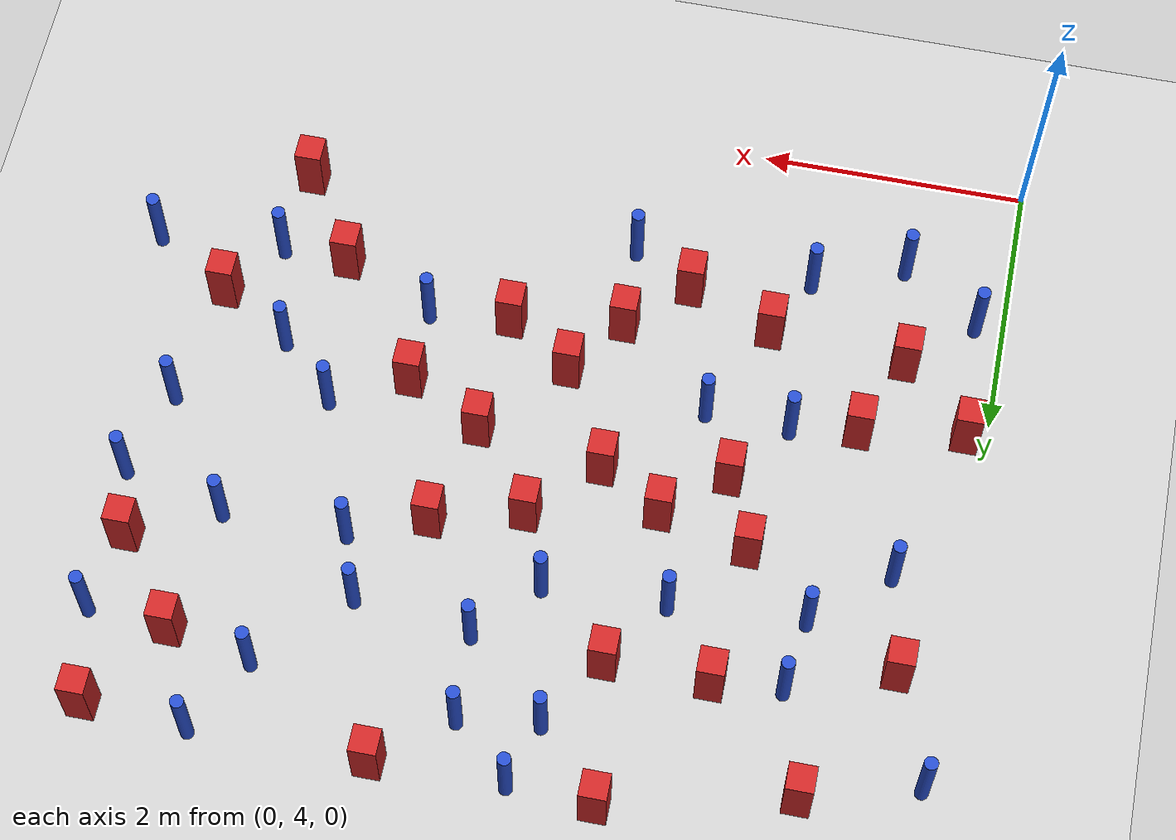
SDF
<sdf version="1.6">
 <world name="default">
  <model name="ground_plane">
   <static>1</static>
   <link name="link">
    <collision name="collision">
     <geometry><plane><normal>0 0 1</normal><size>100 100</size></plane></geometry>
     <surface><friction><ode><mu>100</mu><mu2>50</mu2></ode></friction></surface>
    </collision>
    <visual name="visual">
     <cast_shadows>0</cast_shadows>
     <geometry><plane><normal>0 0 1</normal><size>100 100</size></plane></geometry>
     <material>
      <ambient>1.0 1.0 1.0 1.0</ambient>
      <diffuse>0.8 0.8 0.8 1.0</diffuse>
      <specular>0.01 0.01 0.01 1.000000</specular>
     </material>
    </visual>
   </link>
  </model>
  <model name="square_post_obstacle5">
   <static>true</static>
   <pose>5.80061955398 6.0174033591 1.91545236811e-07 -7.35059704564e-06 1.12565212e-07 2.39332434364e-05</pose>
   <link name="link">
    <pose>0 0 0.25 0 -0 0</pose>
    <inertial>
     <mass>100</mass>
     <inertia>
      <ixx>0.166667</ixx>
      <ixy>0</ixy>
      <ixz>0</ixz>
      <iyy>0.166667</iyy>
      <iyz>0</iyz>
      <izz>0.166667</izz>
     </inertia>
    </inertial>
    <collision name="collision"><geometry><box><size>.2 .2 .5</size></box></geometry></collision>
    <visual name="visual">
     <geometry><box><size>.2 .2 .5</size></box></geometry>
     <material>
      <script><name>Gazebo/Red</name><uri>file://media/materials/scripts/gazebo.material</uri></script>
     </material>
    </visual>
   </link>
  </model>
  <model name="pole_obstacle7">
   <static>true</static>
   <pose>4.88102241531 8.92178213815 7.38925637345e-09 -8.471706928e-08 1.24976765081e-08 -1.74513093015e-07</pose>
   <link name="link">
    <pose>0 0 0.3 0 -0 0</pose>
    <inertial>
     <mass>1</mass>
     <inertia><ixx>0.145833</ixx><ixy>0</ixy><ixz>0</ixz><iyy>0.145833</iyy><iyz>0</iyz><izz>0.125</izz></inertia>
    </inertial>
    <collision name="collision">
     <geometry><cylinder><radius>0.05</radius><length>.6</length></cylinder></geometry>
    </collision>
    <visual name="visual">
     <geometry><cylinder><radius>0.05</radius><length>.6</length></cylinder></geometry>
     <material>
      <script><name>Gazebo/Blue</name><uri>file://media/materials/scripts/gazebo.material</uri></script>
     </material>
    </visual>
   </link>
  </model>
  <model name="square_post_obstacle12">
   <static>true</static>
   <pose>2.73245616664 6.93386750951 1.91545236811e-07 -7.35059704564e-06 1.12565212e-07 2.39332434364e-05</pose>
   <link name="link">
    <pose>0 0 0.25 0 -0 0</pose>
    <inertial>
     <mass>100</mass>
     <inertia>
      <ixx>0.166667</ixx>
      <ixy>0</ixy>
      <ixz>0</ixz>
      <iyy>0.166667</iyy>
      <iyz>0</iyz>
      <izz>0.166667</izz>
     </inertia>
    </inertial>
    <collision name="collision"><geometry><box><size>.2 .2 .5</size></box></geometry></collision>
    <visual name="visual">
     <geometry><box><size>.2 .2 .5</size></box></geometry>
     <material>
      <script><name>Gazebo/Red</name><uri>file://media/materials/scripts/gazebo.material</uri></script>
     </material>
    </visual>
   </link>
  </model>
  <model name="pole_obstacle8">
   <static>true</static>
   <pose>2.06833844879 7.92089976676 7.38925637345e-09 -8.47170692798e-08 1.24976765033e-08 -1.74513093019e-07</pose>
   <link name="link">
    <pose>0 0 0.3 0 -0 0</pose>
    <inertial>
     <mass>1</mass>
     <inertia><ixx>0.145833</ixx><ixy>0</ixy><ixz>0</ixz><iyy>0.145833</iyy><iyz>0</iyz><izz>0.125</izz></inertia>
    </inertial>
    <collision name="collision">
     <geometry><cylinder><radius>0.05</radius><length>.6</length></cylinder></geometry>
    </collision>
    <visual name="visual">
     <geometry><cylinder><radius>0.05</radius><length>.6</length></cylinder></geometry>
     <material>
      <script><name>Gazebo/Blue</name><uri>file://media/materials/scripts/gazebo.material</uri></script>
     </material>
    </visual>
   </link>
  </model>
  <model name="square_post_obstacle14">
   <static>true</static>
   <pose>3.13486374793 6.18309441416 1.91545236811e-07 -7.35059704564e-06 1.12565212e-07 2.39332434364e-05</pose>
   <link name="link">
    <pose>0 0 0.25 0 -0 0</pose>
    <inertial>
     <mass>100</mass>
     <inertia>
      <ixx>0.166667</ixx>
      <ixy>0</ixy>
      <ixz>0</ixz>
      <iyy>0.166667</iyy>
      <iyz>0</iyz>
      <izz>0.166667</izz>
     </inertia>
    </inertial>
    <collision name="collision"><geometry><box><size>.2 .2 .5</size></box></geometry></collision>
    <visual name="visual">
     <geometry><box><size>.2 .2 .5</size></box></geometry>
     <material>
      <script><name>Gazebo/Red</name><uri>file://media/materials/scripts/gazebo.material</uri></script>
     </material>
    </visual>
   </link>
  </model>
  <model name="square_post_obstacle21">
   <static>true</static>
   <pose>3.68544946964 6.7974008489 1.91545236811e-07 -7.35059704564e-06 1.12565212e-07 2.39332434364e-05</pose>
   <link name="link">
    <pose>0 0 0.25 0 -0 0</pose>
    <inertial>
     <mass>100</mass>
     <inertia>
      <ixx>0.166667</ixx>
      <ixy>0</ixy>
      <ixz>0</ixz>
      <iyy>0.166667</iyy>
      <iyz>0</iyz>
      <izz>0.166667</izz>
     </inertia>
    </inertial>
    <collision name="collision"><geometry><box><size>.2 .2 .5</size></box></geometry></collision>
    <visual name="visual">
     <geometry><box><size>.2 .2 .5</size></box></geometry>
     <material>
      <script><name>Gazebo/Red</name><uri>file://media/materials/scripts/gazebo.material</uri></script>
     </material>
    </visual>
   </link>
  </model>
  <model name="square_post_obstacle24">
   <static>true</static>
   <pose>0.687255433754 5.64067073542 1.91545236811e-07 -7.35059704564e-06 1.12565212e-07 2.39332434364e-05</pose>
   <link name="link">
    <pose>0 0 0.25 0 -0 0</pose>
    <inertial>
     <mass>100</mass>
     <inertia>
      <ixx>0.166667</ixx>
      <ixy>0</ixy>
      <ixz>0</ixz>
      <iyy>0.166667</iyy>
      <iyz>0</iyz>
      <izz>0.166667</izz>
     </inertia>
    </inertial>
    <collision name="collision"><geometry><box><size>.2 .2 .5</size></box></geometry></collision>
    <visual name="visual">
     <geometry><box><size>.2 .2 .5</size></box></geometry>
     <material>
      <script><name>Gazebo/Red</name><uri>file://media/materials/scripts/gazebo.material</uri></script>
     </material>
    </visual>
   </link>
  </model>
  <model name="pole_obstacle20">
   <static>true</static>
   <pose>3.3949956898 8.41425188881 7.38925637345e-09 -8.47170692793e-08 1.24976764408e-08 -1.74513093041e-07</pose>
   <link name="link">
    <pose>0 0 0.3 0 -0 0</pose>
    <inertial>
     <mass>1</mass>
     <inertia><ixx>0.145833</ixx><ixy>0</ixy><ixz>0</ixz><iyy>0.145833</iyy><iyz>0</iyz><izz>0.125</izz></inertia>
    </inertial>
    <collision name="collision">
     <geometry><cylinder><radius>0.05</radius><length>.6</length></cylinder></geometry>
    </collision>
    <visual name="visual">
     <geometry><cylinder><radius>0.05</radius><length>.6</length></cylinder></geometry>
     <material>
      <script><name>Gazebo/Blue</name><uri>file://media/materials/scripts/gazebo.material</uri></script>
     </material>
    </visual>
   </link>
  </model>
  <model name="pole_obstacle23">
   <static>true</static>
   <pose>5.36894443515 7.82729851615 7.38925637345e-09 -8.47170692796e-08 1.24976764786e-08 -1.74513093032e-07</pose>
   <link name="link">
    <pose>0 0 0.3 0 -0 0</pose>
    <inertial>
     <mass>1</mass>
     <inertia><ixx>0.145833</ixx><ixy>0</ixy><ixz>0</ixz><iyy>0.145833</iyy><iyz>0</iyz><izz>0.125</izz></inertia>
    </inertial>
    <collision name="collision">
     <geometry><cylinder><radius>0.05</radius><length>.6</length></cylinder></geometry>
    </collision>
    <visual name="visual">
     <geometry><cylinder><radius>0.05</radius><length>.6</length></cylinder></geometry>
     <material>
      <script><name>Gazebo/Blue</name><uri>file://media/materials/scripts/gazebo.material</uri></script>
     </material>
    </visual>
   </link>
  </model>
  <model name="square_post_obstacle35">
   <static>true</static>
   <pose>5.39550575243 4.90414785694 1.91545236811e-07 -7.35059704564e-06 1.12565212e-07 2.39332434364e-05</pose>
   <link name="link">
    <pose>0 0 0.25 0 -0 0</pose>
    <inertial>
     <mass>100</mass>
     <inertia>
      <ixx>0.166667</ixx>
      <ixy>0</ixy>
      <ixz>0</ixz>
      <iyy>0.166667</iyy>
      <iyz>0</iyz>
      <izz>0.166667</izz>
     </inertia>
    </inertial>
    <collision name="collision"><geometry><box><size>.2 .2 .5</size></box></geometry></collision>
    <visual name="visual">
     <geometry><box><size>.2 .2 .5</size></box></geometry>
     <material>
      <script><name>Gazebo/Red</name><uri>file://media/materials/scripts/gazebo.material</uri></script>
     </material>
    </visual>
   </link>
  </model>
  <model name="pole_obstacle34">
   <static>true</static>
   <pose>1.1508606266 8.39606495184 7.38925637345e-09 -8.47170692798e-08 1.24976764881e-08 -1.74513093027e-07</pose>
   <link name="link">
    <pose>0 0 0.3 0 -0 0</pose>
    <inertial>
     <mass>1</mass>
     <inertia><ixx>0.145833</ixx><ixy>0</ixy><ixz>0</ixz><iyy>0.145833</iyy><iyz>0</iyz><izz>0.125</izz></inertia>
    </inertial>
    <collision name="collision">
     <geometry><cylinder><radius>0.05</radius><length>.6</length></cylinder></geometry>
    </collision>
    <visual name="visual">
     <geometry><cylinder><radius>0.05</radius><length>.6</length></cylinder></geometry>
     <material>
      <script><name>Gazebo/Blue</name><uri>file://media/materials/scripts/gazebo.material</uri></script>
     </material>
    </visual>
   </link>
  </model>
  <model name="square_post_obstacle38">
   <static>true</static>
   <pose>2.4285563931 8.43627678345 1.91545236811e-07 -7.35059704564e-06 1.12565212e-07 2.39332434364e-05</pose>
   <link name="link">
    <pose>0 0 0.25 0 -0 0</pose>
    <inertial>
     <mass>100</mass>
     <inertia>
      <ixx>0.166667</ixx>
      <ixy>0</ixy>
      <ixz>0</ixz>
      <iyy>0.166667</iyy>
      <iyz>0</iyz>
      <izz>0.166667</izz>
     </inertia>
    </inertial>
    <collision name="collision"><geometry><box><size>.2 .2 .5</size></box></geometry></collision>
    <visual name="visual">
     <geometry><box><size>.2 .2 .5</size></box></geometry>
     <material>
      <script><name>Gazebo/Red</name><uri>file://media/materials/scripts/gazebo.material</uri></script>
     </material>
    </visual>
   </link>
  </model>
  <model name="square_post_obstacle41">
   <static>true</static>
   <pose>0.386560368932 8.11302376629 1.91545236811e-07 -7.35059704564e-06 1.12565212e-07 2.39332434364e-05</pose>
   <link name="link">
    <pose>0 0 0.25 0 -0 0</pose>
    <inertial>
     <mass>100</mass>
     <inertia>
      <ixx>0.166667</ixx>
      <ixy>0</ixy>
      <ixz>0</ixz>
      <iyy>0.166667</iyy>
      <iyz>0</iyz>
      <izz>0.166667</izz>
     </inertia>
    </inertial>
    <collision name="collision"><geometry><box><size>.2 .2 .5</size></box></geometry></collision>
    <visual name="visual">
     <geometry><box><size>.2 .2 .5</size></box></geometry>
     <material>
      <script><name>Gazebo/Red</name><uri>file://media/materials/scripts/gazebo.material</uri></script>
     </material>
    </visual>
   </link>
  </model>
  <model name="pole_obstacle44">
   <static>true</static>
   <pose>2.97704720485 7.95544871932 7.38925637345e-09 -8.47170692799e-08 1.24976765031e-08 -1.7451309302e-07</pose>
   <link name="link">
    <pose>0 0 0.3 0 -0 0</pose>
    <inertial>
     <mass>1</mass>
     <inertia><ixx>0.145833</ixx><ixy>0</ixy><ixz>0</ixz><iyy>0.145833</iyy><iyz>0</iyz><izz>0.125</izz></inertia>
    </inertial>
    <collision name="collision">
     <geometry><cylinder><radius>0.05</radius><length>.6</length></cylinder></geometry>
    </collision>
    <visual name="visual">
     <geometry><cylinder><radius>0.05</radius><length>.6</length></cylinder></geometry>
     <material>
      <script><name>Gazebo/Blue</name><uri>file://media/materials/scripts/gazebo.material</uri></script>
     </material>
    </visual>
   </link>
  </model>
  <model name="square_post_obstacle46">
   <static>true</static>
   <pose>5.50577073772 8.78721900049 1.91545236811e-07 -7.35059704564e-06 1.12565212e-07 2.39332434364e-05</pose>
   <link name="link">
    <pose>0 0 0.25 0 -0 0</pose>
    <inertial>
     <mass>100</mass>
     <inertia>
      <ixx>0.166667</ixx>
      <ixy>0</ixy>
      <ixz>0</ixz>
      <iyy>0.166667</iyy>
      <iyz>0</iyz>
      <izz>0.166667</izz>
     </inertia>
    </inertial>
    <collision name="collision"><geometry><box><size>.2 .2 .5</size></box></geometry></collision>
    <visual name="visual">
     <geometry><box><size>.2 .2 .5</size></box></geometry>
     <material>
      <script><name>Gazebo/Red</name><uri>file://media/materials/scripts/gazebo.material</uri></script>
     </material>
    </visual>
   </link>
  </model>
  <model name="pole_obstacle60">
   <static>true</static>
   <pose>0.793171323629 4.83244717539 7.38925637345e-09 -8.471706928e-08 1.24976765086e-08 -1.74513093015e-07</pose>
   <link name="link">
    <pose>0 0 0.3 0 -0 0</pose>
    <inertial>
     <mass>1</mass>
     <inertia><ixx>0.145833</ixx><ixy>0</ixy><ixz>0</ixz><iyy>0.145833</iyy><iyz>0</iyz><izz>0.125</izz></inertia>
    </inertial>
    <collision name="collision">
     <geometry><cylinder><radius>0.05</radius><length>.6</length></cylinder></geometry>
    </collision>
    <visual name="visual">
     <geometry><cylinder><radius>0.05</radius><length>.6</length></cylinder></geometry>
     <material>
      <script><name>Gazebo/Blue</name><uri>file://media/materials/scripts/gazebo.material</uri></script>
     </material>
    </visual>
   </link>
  </model>
  <model name="pole_obstacle61">
   <static>true</static>
   <pose>0.209050802885 5.22237594775 7.38925637345e-09 -8.471706928e-08 1.24976765124e-08 -1.74513093014e-07</pose>
   <link name="link">
    <pose>0 0 0.3 0 -0 0</pose>
    <inertial>
     <mass>1</mass>
     <inertia><ixx>0.145833</ixx><ixy>0</ixy><ixz>0</ixz><iyy>0.145833</iyy><iyz>0</iyz><izz>0.125</izz></inertia>
    </inertial>
    <collision name="collision">
     <geometry><cylinder><radius>0.05</radius><length>.6</length></cylinder></geometry>
    </collision>
    <visual name="visual">
     <geometry><cylinder><radius>0.05</radius><length>.6</length></cylinder></geometry>
     <material>
      <script><name>Gazebo/Blue</name><uri>file://media/materials/scripts/gazebo.material</uri></script>
     </material>
    </visual>
   </link>
  </model>
  <model name="square_post_obstacle65">
   <static>true</static>
   <pose>2.25815140085 7.21379057646 1.91545236811e-07 -7.35059704564e-06 1.12565212e-07 2.39332434364e-05</pose>
   <link name="link">
    <pose>0 0 0.25 0 -0 0</pose>
    <inertial>
     <mass>100</mass>
     <inertia>
      <ixx>0.166667</ixx>
      <ixy>0</ixy>
      <ixz>0</ixz>
      <iyy>0.166667</iyy>
      <iyz>0</iyz>
      <izz>0.166667</izz>
     </inertia>
    </inertial>
    <collision name="collision"><geometry><box><size>.2 .2 .5</size></box></geometry></collision>
    <visual name="visual">
     <geometry><box><size>.2 .2 .5</size></box></geometry>
     <material>
      <script><name>Gazebo/Red</name><uri>file://media/materials/scripts/gazebo.material</uri></script>
     </material>
    </visual>
   </link>
  </model>
  <model name="pole_obstacle63">
   <static>true</static>
   <pose>6.12129108633 8.74121993011 7.38925637345e-09 -8.471706928e-08 1.24976765081e-08 -1.74513093015e-07</pose>
   <link name="link">
    <pose>0 0 0.3 0 -0 0</pose>
    <inertial>
     <mass>1</mass>
     <inertia><ixx>0.145833</ixx><ixy>0</ixy><ixz>0</ixz><iyy>0.145833</iyy><iyz>0</iyz><izz>0.125</izz></inertia>
    </inertial>
    <collision name="collision">
     <geometry><cylinder><radius>0.05</radius><length>.6</length></cylinder></geometry>
    </collision>
    <visual name="visual">
     <geometry><cylinder><radius>0.05</radius><length>.6</length></cylinder></geometry>
     <material>
      <script><name>Gazebo/Blue</name><uri>file://media/materials/scripts/gazebo.material</uri></script>
     </material>
    </visual>
   </link>
  </model>
  <model name="square_post_obstacle68">
   <static>true</static>
   <pose>0.162260938094 6.15236665479 1.91545236811e-07 -7.35059704564e-06 1.12565212e-07 2.39332434364e-05</pose>
   <link name="link">
    <pose>0 0 0.25 0 -0 0</pose>
    <inertial>
     <mass>100</mass>
     <inertia>
      <ixx>0.166667</ixx>
      <ixy>0</ixy>
      <ixz>0</ixz>
      <iyy>0.166667</iyy>
      <iyz>0</iyz>
      <izz>0.166667</izz>
     </inertia>
    </inertial>
    <collision name="collision"><geometry><box><size>.2 .2 .5</size></box></geometry></collision>
    <visual name="visual">
     <geometry><box><size>.2 .2 .5</size></box></geometry>
     <material>
      <script><name>Gazebo/Red</name><uri>file://media/materials/scripts/gazebo.material</uri></script>
     </material>
    </visual>
   </link>
  </model>
  <model name="pole_obstacle68">
   <static>true</static>
   <pose>1.43876306927 6.35146489919 7.38925637345e-09 -8.47170692799e-08 1.24976765033e-08 -1.74513093018e-07</pose>
   <link name="link">
    <pose>0 0 0.3 0 -0 0</pose>
    <inertial>
     <mass>1</mass>
     <inertia><ixx>0.145833</ixx><ixy>0</ixy><ixz>0</ixz><iyy>0.145833</iyy><iyz>0</iyz><izz>0.125</izz></inertia>
    </inertial>
    <collision name="collision">
     <geometry><cylinder><radius>0.05</radius><length>.6</length></cylinder></geometry>
    </collision>
    <visual name="visual">
     <geometry><cylinder><radius>0.05</radius><length>.6</length></cylinder></geometry>
     <material>
      <script><name>Gazebo/Blue</name><uri>file://media/materials/scripts/gazebo.material</uri></script>
     </material>
    </visual>
   </link>
  </model>
  <model name="square_post_obstacle75">
   <static>true</static>
   <pose>5.9557461315 9.44500655807 1.91545236811e-07 -7.35059704564e-06 1.12565212e-07 2.39332434364e-05</pose>
   <link name="link">
    <pose>0 0 0.25 0 -0 0</pose>
    <inertial>
     <mass>100</mass>
     <inertia>
      <ixx>0.166667</ixx>
      <ixy>0</ixy>
      <ixz>0</ixz>
      <iyy>0.166667</iyy>
      <iyz>0</iyz>
      <izz>0.166667</izz>
     </inertia>
    </inertial>
    <collision name="collision"><geometry><box><size>.2 .2 .5</size></box></geometry></collision>
    <visual name="visual">
     <geometry><box><size>.2 .2 .5</size></box></geometry>
     <material>
      <script><name>Gazebo/Red</name><uri>file://media/materials/scripts/gazebo.material</uri></script>
     </material>
    </visual>
   </link>
  </model>
  <model name="square_post_obstacle77">
   <static>true</static>
   <pose>3.63603606966 5.85053127859 1.91545236811e-07 -7.35059704564e-06 1.12565212e-07 2.39332434364e-05</pose>
   <link name="link">
    <pose>0 0 0.25 0 -0 0</pose>
    <inertial>
     <mass>100</mass>
     <inertia>
      <ixx>0.166667</ixx>
      <ixy>0</ixy>
      <ixz>0</ixz>
      <iyy>0.166667</iyy>
      <iyz>0</iyz>
      <izz>0.166667</izz>
     </inertia>
    </inertial>
    <collision name="collision"><geometry><box><size>.2 .2 .5</size></box></geometry></collision>
    <visual name="visual">
     <geometry><box><size>.2 .2 .5</size></box></geometry>
     <material>
      <script><name>Gazebo/Red</name><uri>file://media/materials/scripts/gazebo.material</uri></script>
     </material>
    </visual>
   </link>
  </model>
  <model name="pole_obstacle80">
   <static>true</static>
   <pose>0.0915707972432 8.9291753229 7.38925637345e-09 -8.47170692797e-08 1.24976764742e-08 -1.74513093035e-07</pose>
   <link name="link">
    <pose>0 0 0.3 0 -0 0</pose>
    <inertial>
     <mass>1</mass>
     <inertia><ixx>0.145833</ixx><ixy>0</ixy><ixz>0</ixz><iyy>0.145833</iyy><iyz>0</iyz><izz>0.125</izz></inertia>
    </inertial>
    <collision name="collision">
     <geometry><cylinder><radius>0.05</radius><length>.6</length></cylinder></geometry>
    </collision>
    <visual name="visual">
     <geometry><cylinder><radius>0.05</radius><length>.6</length></cylinder></geometry>
     <material>
      <script><name>Gazebo/Blue</name><uri>file://media/materials/scripts/gazebo.material</uri></script>
     </material>
    </visual>
   </link>
  </model>
  <model name="pole_obstacle82">
   <static>true</static>
   <pose>4.83033998323 6.77818835815 7.38925637345e-09 -8.47170692796e-08 1.24976764786e-08 -1.74513093032e-07</pose>
   <link name="link">
    <pose>0 0 0.3 0 -0 0</pose>
    <inertial>
     <mass>1</mass>
     <inertia><ixx>0.145833</ixx><ixy>0</ixy><ixz>0</ixz><iyy>0.145833</iyy><iyz>0</iyz><izz>0.125</izz></inertia>
    </inertial>
    <collision name="collision">
     <geometry><cylinder><radius>0.05</radius><length>.6</length></cylinder></geometry>
    </collision>
    <visual name="visual">
     <geometry><cylinder><radius>0.05</radius><length>.6</length></cylinder></geometry>
     <material>
      <script><name>Gazebo/Blue</name><uri>file://media/materials/scripts/gazebo.material</uri></script>
     </material>
    </visual>
   </link>
  </model>
  <model name="pole_obstacle84">
   <static>true</static>
   <pose>0.52456202542 7.37792999792 7.38925637345e-09 -8.47170692799e-08 1.24976765073e-08 -1.74513093015e-07</pose>
   <link name="link">
    <pose>0 0 0.3 0 -0 0</pose>
    <inertial>
     <mass>1</mass>
     <inertia><ixx>0.145833</ixx><ixy>0</ixy><ixz>0</ixz><iyy>0.145833</iyy><iyz>0</iyz><izz>0.125</izz></inertia>
    </inertial>
    <collision name="collision">
     <geometry><cylinder><radius>0.05</radius><length>.6</length></cylinder></geometry>
    </collision>
    <visual name="visual">
     <geometry><cylinder><radius>0.05</radius><length>.6</length></cylinder></geometry>
     <material>
      <script><name>Gazebo/Blue</name><uri>file://media/materials/scripts/gazebo.material</uri></script>
     </material>
    </visual>
   </link>
  </model>
  <model name="square_post_obstacle89">
   <static>true</static>
   <pose>1.81003895004 6.83379132588 1.91545236811e-07 -7.35059704564e-06 1.12565212e-07 2.39332434364e-05</pose>
   <link name="link">
    <pose>0 0 0.25 0 -0 0</pose>
    <inertial>
     <mass>100</mass>
     <inertia>
      <ixx>0.166667</ixx>
      <ixy>0</ixy>
      <ixz>0</ixz>
      <iyy>0.166667</iyy>
      <iyz>0</iyz>
      <izz>0.166667</izz>
     </inertia>
    </inertial>
    <collision name="collision"><geometry><box><size>.2 .2 .5</size></box></geometry></collision>
    <visual name="visual">
     <geometry><box><size>.2 .2 .5</size></box></geometry>
     <material>
      <script><name>Gazebo/Red</name><uri>file://media/materials/scripts/gazebo.material</uri></script>
     </material>
    </visual>
   </link>
  </model>
  <model name="pole_obstacle113">
   <static>true</static>
   <pose>1.47328044232 5.08921075645 7.38925637345e-09 -8.47170692799e-08 1.24976765033e-08 -1.74513093018e-07</pose>
   <link name="link">
    <pose>0 0 0.3 0 -0 0</pose>
    <inertial>
     <mass>1</mass>
     <inertia><ixx>0.145833</ixx><ixy>0</ixy><ixz>0</ixz><iyy>0.145833</iyy><iyz>0</iyz><izz>0.125</izz></inertia>
    </inertial>
    <collision name="collision">
     <geometry><cylinder><radius>0.05</radius><length>.6</length></cylinder></geometry>
    </collision>
    <visual name="visual">
     <geometry><cylinder><radius>0.05</radius><length>.6</length></cylinder></geometry>
     <material>
      <script><name>Gazebo/Blue</name><uri>file://media/materials/scripts/gazebo.material</uri></script>
     </material>
    </visual>
   </link>
  </model>
  <model name="square_post_obstacle104">
   <static>true</static>
   <pose>3.88529308356 9.48181720621 1.91545236811e-07 -7.35059704564e-06 1.12565212e-07 2.39332434364e-05</pose>
   <link name="link">
    <pose>0 0 0.25 0 -0 0</pose>
    <inertial>
     <mass>100</mass>
     <inertia>
      <ixx>0.166667</ixx>
      <ixy>0</ixy>
      <ixz>0</ixz>
      <iyy>0.166667</iyy>
      <iyz>0</iyz>
      <izz>0.166667</izz>
     </inertia>
    </inertial>
    <collision name="collision"><geometry><box><size>.2 .2 .5</size></box></geometry></collision>
    <visual name="visual">
     <geometry><box><size>.2 .2 .5</size></box></geometry>
     <material>
      <script><name>Gazebo/Red</name><uri>file://media/materials/scripts/gazebo.material</uri></script>
     </material>
    </visual>
   </link>
  </model>
  <model name="pole_obstacle119">
   <static>true</static>
   <pose>2.07080901344 6.33042898426 7.38925637345e-09 -8.47170692798e-08 1.24976765033e-08 -1.74513093019e-07</pose>
   <link name="link">
    <pose>0 0 0.3 0 -0 0</pose>
    <inertial>
     <mass>1</mass>
     <inertia><ixx>0.145833</ixx><ixy>0</ixy><ixz>0</ixz><iyy>0.145833</iyy><iyz>0</iyz><izz>0.125</izz></inertia>
    </inertial>
    <collision name="collision">
     <geometry><cylinder><radius>0.05</radius><length>.6</length></cylinder></geometry>
    </collision>
    <visual name="visual">
     <geometry><cylinder><radius>0.05</radius><length>.6</length></cylinder></geometry>
     <material>
      <script><name>Gazebo/Blue</name><uri>file://media/materials/scripts/gazebo.material</uri></script>
     </material>
    </visual>
   </link>
  </model>
  <model name="pole_obstacle124">
   <static>true</static>
   <pose>5.26019358769 6.3572361286 7.38925637345e-09 -8.47170692796e-08 1.24976764786e-08 -1.74513093032e-07</pose>
   <link name="link">
    <pose>0 0 0.3 0 -0 0</pose>
    <inertial>
     <mass>1</mass>
     <inertia><ixx>0.145833</ixx><ixy>0</ixy><ixz>0</ixz><iyy>0.145833</iyy><iyz>0</iyz><izz>0.125</izz></inertia>
    </inertial>
    <collision name="collision">
     <geometry><cylinder><radius>0.05</radius><length>.6</length></cylinder></geometry>
    </collision>
    <visual name="visual">
     <geometry><cylinder><radius>0.05</radius><length>.6</length></cylinder></geometry>
     <material>
      <script><name>Gazebo/Blue</name><uri>file://media/materials/scripts/gazebo.material</uri></script>
     </material>
    </visual>
   </link>
  </model>
  <model name="pole_obstacle126">
   <static>true</static>
   <pose>5.95629808954 6.96195762609 7.38925637345e-09 -8.47170692796e-08 1.24976764786e-08 -1.74513093032e-07</pose>
   <link name="link">
    <pose>0 0 0.3 0 -0 0</pose>
    <inertial>
     <mass>1</mass>
     <inertia><ixx>0.145833</ixx><ixy>0</ixy><ixz>0</ixz><iyy>0.145833</iyy><iyz>0</iyz><izz>0.125</izz></inertia>
    </inertial>
    <collision name="collision">
     <geometry><cylinder><radius>0.05</radius><length>.6</length></cylinder></geometry>
    </collision>
    <visual name="visual">
     <geometry><cylinder><radius>0.05</radius><length>.6</length></cylinder></geometry>
     <material>
      <script><name>Gazebo/Blue</name><uri>file://media/materials/scripts/gazebo.material</uri></script>
     </material>
    </visual>
   </link>
  </model>
  <model name="pole_obstacle130">
   <static>true</static>
   <pose>4.27420506988 8.30524575437 7.38925637345e-09 -8.471706928e-08 1.24976765081e-08 -1.74513093015e-07</pose>
   <link name="link">
    <pose>0 0 0.3 0 -0 0</pose>
    <inertial>
     <mass>1</mass>
     <inertia><ixx>0.145833</ixx><ixy>0</ixy><ixz>0</ixz><iyy>0.145833</iyy><iyz>0</iyz><izz>0.125</izz></inertia>
    </inertial>
    <collision name="collision">
     <geometry><cylinder><radius>0.05</radius><length>.6</length></cylinder></geometry>
    </collision>
    <visual name="visual">
     <geometry><cylinder><radius>0.05</radius><length>.6</length></cylinder></geometry>
     <material>
      <script><name>Gazebo/Blue</name><uri>file://media/materials/scripts/gazebo.material</uri></script>
     </material>
    </visual>
   </link>
  </model>
  <model name="pole_obstacle132">
   <static>true</static>
   <pose>1.07292861999 7.84470740563 7.38925637345e-09 -8.47170692799e-08 1.24976765033e-08 -1.74513093018e-07</pose>
   <link name="link">
    <pose>0 0 0.3 0 -0 0</pose>
    <inertial>
     <mass>1</mass>
     <inertia><ixx>0.145833</ixx><ixy>0</ixy><ixz>0</ixz><iyy>0.145833</iyy><iyz>0</iyz><izz>0.125</izz></inertia>
    </inertial>
    <collision name="collision">
     <geometry><cylinder><radius>0.05</radius><length>.6</length></cylinder></geometry>
    </collision>
    <visual name="visual">
     <geometry><cylinder><radius>0.05</radius><length>.6</length></cylinder></geometry>
     <material>
      <script><name>Gazebo/Blue</name><uri>file://media/materials/scripts/gazebo.material</uri></script>
     </material>
    </visual>
   </link>
  </model>
  <model name="square_post_obstacle126">
   <static>true</static>
   <pose>2.3649061577 5.31929381152 1.91545236811e-07 -7.35059704564e-06 1.12565212e-07 2.39332434364e-05</pose>
   <link name="link">
    <pose>0 0 0.25 0 -0 0</pose>
    <inertial>
     <mass>100</mass>
     <inertia>
      <ixx>0.166667</ixx>
      <ixy>0</ixy>
      <ixz>0</ixz>
      <iyy>0.166667</iyy>
      <iyz>0</iyz>
      <izz>0.166667</izz>
     </inertia>
    </inertial>
    <collision name="collision"><geometry><box><size>.2 .2 .5</size></box></geometry></collision>
    <visual name="visual">
     <geometry><box><size>.2 .2 .5</size></box></geometry>
     <material>
      <script><name>Gazebo/Red</name><uri>file://media/materials/scripts/gazebo.material</uri></script>
     </material>
    </visual>
   </link>
  </model>
  <model name="square_post_obstacle128">
   <static>true</static>
   <pose>0.929247699029 9.16432815297 1.91545236811e-07 -7.35059704564e-06 1.12565212e-07 2.39332434364e-05</pose>
   <link name="link">
    <pose>0 0 0.25 0 -0 0</pose>
    <inertial>
     <mass>100</mass>
     <inertia>
      <ixx>0.166667</ixx>
      <ixy>0</ixy>
      <ixz>0</ixz>
      <iyy>0.166667</iyy>
      <iyz>0</iyz>
      <izz>0.166667</izz>
     </inertia>
    </inertial>
    <collision name="collision"><geometry><box><size>.2 .2 .5</size></box></geometry></collision>
    <visual name="visual">
     <geometry><box><size>.2 .2 .5</size></box></geometry>
     <material>
      <script><name>Gazebo/Red</name><uri>file://media/materials/scripts/gazebo.material</uri></script>
     </material>
    </visual>
   </link>
  </model>
  <model name="square_post_obstacle131">
   <static>true</static>
   <pose>5.99985363703 8.12798285687 1.91545236811e-07 -7.35059704564e-06 1.12565212e-07 2.39332434364e-05</pose>
   <link name="link">
    <pose>0 0 0.25 0 -0 0</pose>
    <inertial>
     <mass>100</mass>
     <inertia>
      <ixx>0.166667</ixx>
      <ixy>0</ixy>
      <ixz>0</ixz>
      <iyy>0.166667</iyy>
      <iyz>0</iyz>
      <izz>0.166667</izz>
     </inertia>
    </inertial>
    <collision name="collision"><geometry><box><size>.2 .2 .5</size></box></geometry></collision>
    <visual name="visual">
     <geometry><box><size>.2 .2 .5</size></box></geometry>
     <material>
      <script><name>Gazebo/Red</name><uri>file://media/materials/scripts/gazebo.material</uri></script>
     </material>
    </visual>
   </link>
  </model>
  <model name="square_post_obstacle133">
   <static>true</static>
   <pose>1.58130571419 7.3794176581 1.91545236811e-07 -7.35059704564e-06 1.12565212e-07 2.39332434364e-05</pose>
   <link name="link">
    <pose>0 0 0.25 0 -0 0</pose>
    <inertial>
     <mass>100</mass>
     <inertia>
      <ixx>0.166667</ixx>
      <ixy>0</ixy>
      <ixz>0</ixz>
      <iyy>0.166667</iyy>
      <iyz>0</iyz>
      <izz>0.166667</izz>
     </inertia>
    </inertial>
    <collision name="collision"><geometry><box><size>.2 .2 .5</size></box></geometry></collision>
    <visual name="visual">
     <geometry><box><size>.2 .2 .5</size></box></geometry>
     <material>
      <script><name>Gazebo/Red</name><uri>file://media/materials/scripts/gazebo.material</uri></script>
     </material>
    </visual>
   </link>
  </model>
  <model name="pole_obstacle144">
   <static>true</static>
   <pose>2.76923336532 8.98238187532 7.38925637345e-09 -8.47170692793e-08 1.24976764408e-08 -1.74513093041e-07</pose>
   <link name="link">
    <pose>0 0 0.3 0 -0 0</pose>
    <inertial>
     <mass>1</mass>
     <inertia><ixx>0.145833</ixx><ixy>0</ixy><ixz>0</ixz><iyy>0.145833</iyy><iyz>0</iyz><izz>0.125</izz></inertia>
    </inertial>
    <collision name="collision">
     <geometry><cylinder><radius>0.05</radius><length>.6</length></cylinder></geometry>
    </collision>
    <visual name="visual">
     <geometry><cylinder><radius>0.05</radius><length>.6</length></cylinder></geometry>
     <material>
      <script><name>Gazebo/Blue</name><uri>file://media/materials/scripts/gazebo.material</uri></script>
     </material>
    </visual>
   </link>
  </model>
  <model name="square_post_obstacle140">
   <static>true</static>
   <pose>1.66508703165 8.44451373125 1.91545236811e-07 -7.35059704564e-06 1.12565212e-07 2.39332434364e-05</pose>
   <link name="link">
    <pose>0 0 0.25 0 -0 0</pose>
    <inertial>
     <mass>100</mass>
     <inertia>
      <ixx>0.166667</ixx>
      <ixy>0</ixy>
      <ixz>0</ixz>
      <iyy>0.166667</iyy>
      <iyz>0</iyz>
      <izz>0.166667</izz>
     </inertia>
    </inertial>
    <collision name="collision"><geometry><box><size>.2 .2 .5</size></box></geometry></collision>
    <visual name="visual">
     <geometry><box><size>.2 .2 .5</size></box></geometry>
     <material>
      <script><name>Gazebo/Red</name><uri>file://media/materials/scripts/gazebo.material</uri></script>
     </material>
    </visual>
   </link>
  </model>
  <model name="square_post_obstacle148">
   <static>true</static>
   <pose>0.941580875303 6.27275967781 1.91545236811e-07 -7.35059704564e-06 1.12565212e-07 2.39332434364e-05</pose>
   <link name="link">
    <pose>0 0 0.25 0 -0 0</pose>
    <inertial>
     <mass>100</mass>
     <inertia>
      <ixx>0.166667</ixx>
      <ixy>0</ixy>
      <ixz>0</ixz>
      <iyy>0.166667</iyy>
      <iyz>0</iyz>
      <izz>0.166667</izz>
     </inertia>
    </inertial>
    <collision name="collision"><geometry><box><size>.2 .2 .5</size></box></geometry></collision>
    <visual name="visual">
     <geometry><box><size>.2 .2 .5</size></box></geometry>
     <material>
      <script><name>Gazebo/Red</name><uri>file://media/materials/scripts/gazebo.material</uri></script>
     </material>
    </visual>
   </link>
  </model>
  <model name="square_post_obstacle149">
   <static>true</static>
   <pose>4.95541505264 5.59129887047 1.91545236811e-07 -7.35059704564e-06 1.12565212e-07 2.39332434364e-05</pose>
   <link name="link">
    <pose>0 0 0.25 0 -0 0</pose>
    <inertial>
     <mass>100</mass>
     <inertia>
      <ixx>0.166667</ixx>
      <ixy>0</ixy>
      <ixz>0</ixz>
      <iyy>0.166667</iyy>
      <iyz>0</iyz>
      <izz>0.166667</izz>
     </inertia>
    </inertial>
    <collision name="collision"><geometry><box><size>.2 .2 .5</size></box></geometry></collision>
    <visual name="visual">
     <geometry><box><size>.2 .2 .5</size></box></geometry>
     <material>
      <script><name>Gazebo/Red</name><uri>file://media/materials/scripts/gazebo.material</uri></script>
     </material>
    </visual>
   </link>
  </model>
  <model name="pole_obstacle163">
   <static>true</static>
   <pose>2.82755095613 5.06384681439 7.38925637345e-09 -8.47170692798e-08 1.24976765033e-08 -1.74513093019e-07</pose>
   <link name="link">
    <pose>0 0 0.3 0 -0 0</pose>
    <inertial>
     <mass>1</mass>
     <inertia><ixx>0.145833</ixx><ixy>0</ixy><ixz>0</ixz><iyy>0.145833</iyy><iyz>0</iyz><izz>0.125</izz></inertia>
    </inertial>
    <collision name="collision">
     <geometry><cylinder><radius>0.05</radius><length>.6</length></cylinder></geometry>
    </collision>
    <visual name="visual">
     <geometry><cylinder><radius>0.05</radius><length>.6</length></cylinder></geometry>
     <material>
      <script><name>Gazebo/Blue</name><uri>file://media/materials/scripts/gazebo.material</uri></script>
     </material>
    </visual>
   </link>
  </model>
  <model name="pole_obstacle164">
   <static>true</static>
   <pose>3.35965222814 9.06295763218 7.38925637345e-09 -8.47170692793e-08 1.24976764408e-08 -1.74513093041e-07</pose>
   <link name="link">
    <pose>0 0 0.3 0 -0 0</pose>
    <inertial>
     <mass>1</mass>
     <inertia><ixx>0.145833</ixx><ixy>0</ixy><ixz>0</ixz><iyy>0.145833</iyy><iyz>0</iyz><izz>0.125</izz></inertia>
    </inertial>
    <collision name="collision">
     <geometry><cylinder><radius>0.05</radius><length>.6</length></cylinder></geometry>
    </collision>
    <visual name="visual">
     <geometry><cylinder><radius>0.05</radius><length>.6</length></cylinder></geometry>
     <material>
      <script><name>Gazebo/Blue</name><uri>file://media/materials/scripts/gazebo.material</uri></script>
     </material>
    </visual>
   </link>
  </model>
  <model name="pole_obstacle168">
   <static>true</static>
   <pose>6.41740724711 5.6462248421 7.38925637345e-09 -8.47170692796e-08 1.24976764786e-08 -1.74513093032e-07</pose>
   <link name="link">
    <pose>0 0 0.3 0 -0 0</pose>
    <inertial>
     <mass>1</mass>
     <inertia><ixx>0.145833</ixx><ixy>0</ixy><ixz>0</ixz><iyy>0.145833</iyy><iyz>0</iyz><izz>0.125</izz></inertia>
    </inertial>
    <collision name="collision">
     <geometry><cylinder><radius>0.05</radius><length>.6</length></cylinder></geometry>
    </collision>
    <visual name="visual">
     <geometry><cylinder><radius>0.05</radius><length>.6</length></cylinder></geometry>
     <material>
      <script><name>Gazebo/Blue</name><uri>file://media/materials/scripts/gazebo.material</uri></script>
     </material>
    </visual>
   </link>
  </model>
  <model name="pole_obstacle175">
   <static>true</static>
   <pose>4.44347142385 7.82061267422 7.38925637345e-09 -8.47170692796e-08 1.24976764786e-08 -1.74513093032e-07</pose>
   <link name="link">
    <pose>0 0 0.3 0 -0 0</pose>
    <inertial>
     <mass>1</mass>
     <inertia><ixx>0.145833</ixx><ixy>0</ixy><ixz>0</ixz><iyy>0.145833</iyy><iyz>0</iyz><izz>0.125</izz></inertia>
    </inertial>
    <collision name="collision">
     <geometry><cylinder><radius>0.05</radius><length>.6</length></cylinder></geometry>
    </collision>
    <visual name="visual">
     <geometry><cylinder><radius>0.05</radius><length>.6</length></cylinder></geometry>
     <material>
      <script><name>Gazebo/Blue</name><uri>file://media/materials/scripts/gazebo.material</uri></script>
     </material>
    </visual>
   </link>
  </model>
  <model name="square_post_obstacle172">
   <static>true</static>
   <pose>3.20477362554 7.40783146705 1.91545236811e-07 -7.35059704564e-06 1.12565212e-07 2.39332434364e-05</pose>
   <link name="link">
    <pose>0 0 0.25 0 -0 0</pose>
    <inertial>
     <mass>100</mass>
     <inertia>
      <ixx>0.166667</ixx>
      <ixy>0</ixy>
      <ixz>0</ixz>
      <iyy>0.166667</iyy>
      <iyz>0</iyz>
      <izz>0.166667</izz>
     </inertia>
    </inertial>
    <collision name="collision"><geometry><box><size>.2 .2 .5</size></box></geometry></collision>
    <visual name="visual">
     <geometry><box><size>.2 .2 .5</size></box></geometry>
     <material>
      <script><name>Gazebo/Red</name><uri>file://media/materials/scripts/gazebo.material</uri></script>
     </material>
    </visual>
   </link>
  </model>
  <model name="pole_obstacle186">
   <static>true</static>
   <pose>5.46721392706 5.57340952427 7.38925637345e-09 -8.47170692796e-08 1.24976764786e-08 -1.74513093032e-07</pose>
   <link name="link">
    <pose>0 0 0.3 0 -0 0</pose>
    <inertial>
     <mass>1</mass>
     <inertia><ixx>0.145833</ixx><ixy>0</ixy><ixz>0</ixz><iyy>0.145833</iyy><iyz>0</iyz><izz>0.125</izz></inertia>
    </inertial>
    <collision name="collision">
     <geometry><cylinder><radius>0.05</radius><length>.6</length></cylinder></geometry>
    </collision>
    <visual name="visual">
     <geometry><cylinder><radius>0.05</radius><length>.6</length></cylinder></geometry>
     <material>
      <script><name>Gazebo/Blue</name><uri>file://media/materials/scripts/gazebo.material</uri></script>
     </material>
    </visual>
   </link>
  </model>
  <model name="square_post_obstacle179">
   <static>true</static>
   <pose>2.79847710169 5.72249243206 1.91545236811e-07 -7.35059704564e-06 1.12565212e-07 2.39332434364e-05</pose>
   <link name="link">
    <pose>0 0 0.25 0 -0 0</pose>
    <inertial>
     <mass>100</mass>
     <inertia>
      <ixx>0.166667</ixx>
      <ixy>0</ixy>
      <ixz>0</ixz>
      <iyy>0.166667</iyy>
      <iyz>0</iyz>
      <izz>0.166667</izz>
     </inertia>
    </inertial>
    <collision name="collision"><geometry><box><size>.2 .2 .5</size></box></geometry></collision>
    <visual name="visual">
     <geometry><box><size>.2 .2 .5</size></box></geometry>
     <material>
      <script><name>Gazebo/Red</name><uri>file://media/materials/scripts/gazebo.material</uri></script>
     </material>
    </visual>
   </link>
  </model>
  <model name="square_post_obstacle198">
   <static>true</static>
   <pose>1.71470710151 5.56388946503 1.91545236811e-07 -7.35059704564e-06 1.12565212e-07 2.39332434364e-05</pose>
   <link name="link">
    <pose>0 0 0.25 0 -0 0</pose>
    <inertial>
     <mass>100</mass>
     <inertia>
      <ixx>0.166667</ixx>
      <ixy>0</ixy>
      <ixz>0</ixz>
      <iyy>0.166667</iyy>
      <iyz>0</iyz>
      <izz>0.166667</izz>
     </inertia>
    </inertial>
    <collision name="collision"><geometry><box><size>.2 .2 .5</size></box></geometry></collision>
    <visual name="visual">
     <geometry><box><size>.2 .2 .5</size></box></geometry>
     <material>
      <script><name>Gazebo/Red</name><uri>file://media/materials/scripts/gazebo.material</uri></script>
     </material>
    </visual>
   </link>
  </model>
  <model name="pole_obstacle192">
   <static>true</static>
   <pose>2.91851827181 9.46565734872 7.38925637345e-09 -8.47170692793e-08 1.24976764408e-08 -1.74513093041e-07</pose>
   <link name="link">
    <pose>0 0 0.3 0 -0 0</pose>
    <inertial>
     <mass>1</mass>
     <inertia><ixx>0.145833</ixx><ixy>0</ixy><ixz>0</ixz><iyy>0.145833</iyy><iyz>0</iyz><izz>0.125</izz></inertia>
    </inertial>
    <collision name="collision">
     <geometry><cylinder><radius>0.05</radius><length>.6</length></cylinder></geometry>
    </collision>
    <visual name="visual">
     <geometry><cylinder><radius>0.05</radius><length>.6</length></cylinder></geometry>
     <material>
      <script><name>Gazebo/Blue</name><uri>file://media/materials/scripts/gazebo.material</uri></script>
     </material>
    </visual>
   </link>
  </model>
  <model name="pole_obstacle198">
   <static>true</static>
   <pose>6.14483869042 7.6279948769 7.38925637345e-09 -8.47170692796e-08 1.24976764786e-08 -1.74513093032e-07</pose>
   <link name="link">
    <pose>0 0 0.3 0 -0 0</pose>
    <inertial>
     <mass>1</mass>
     <inertia><ixx>0.145833</ixx><ixy>0</ixy><ixz>0</ixz><iyy>0.145833</iyy><iyz>0</iyz><izz>0.125</izz></inertia>
    </inertial>
    <collision name="collision">
     <geometry><cylinder><radius>0.05</radius><length>.6</length></cylinder></geometry>
    </collision>
    <visual name="visual">
     <geometry><cylinder><radius>0.05</radius><length>.6</length></cylinder></geometry>
     <material>
      <script><name>Gazebo/Blue</name><uri>file://media/materials/scripts/gazebo.material</uri></script>
     </material>
    </visual>
   </link>
  </model>
  <model name="pole_obstacle200">
   <static>true</static>
   <pose>4.25691404875 5.91077769355 7.38925637345e-09 -8.47170692796e-08 1.24976764786e-08 -1.74513093032e-07</pose>
   <link name="link">
    <pose>0 0 0.3 0 -0 0</pose>
    <inertial>
     <mass>1</mass>
     <inertia><ixx>0.145833</ixx><ixy>0</ixy><ixz>0</ixz><iyy>0.145833</iyy><iyz>0</iyz><izz>0.125</izz></inertia>
    </inertial>
    <collision name="collision">
     <geometry><cylinder><radius>0.05</radius><length>.6</length></cylinder></geometry>
    </collision>
    <visual name="visual">
     <geometry><cylinder><radius>0.05</radius><length>.6</length></cylinder></geometry>
     <material>
      <script><name>Gazebo/Blue</name><uri>file://media/materials/scripts/gazebo.material</uri></script>
     </material>
    </visual>
   </link>
  </model>
  <model name="pole_obstacle220">
   <static>true</static>
   <pose>5.18858602255 9.49940470112 7.38925637345e-09 -8.471706928e-08 1.24976765081e-08 -1.74513093015e-07</pose>
   <link name="link">
    <pose>0 0 0.3 0 -0 0</pose>
    <inertial>
     <mass>1</mass>
     <inertia><ixx>0.145833</ixx><ixy>0</ixy><ixz>0</ixz><iyy>0.145833</iyy><iyz>0</iyz><izz>0.125</izz></inertia>
    </inertial>
    <collision name="collision">
     <geometry><cylinder><radius>0.05</radius><length>.6</length></cylinder></geometry>
    </collision>
    <visual name="visual">
     <geometry><cylinder><radius>0.05</radius><length>.6</length></cylinder></geometry>
     <material>
      <script><name>Gazebo/Blue</name><uri>file://media/materials/scripts/gazebo.material</uri></script>
     </material>
    </visual>
   </link>
  </model>
  <model name="square_post_obstacle210">
   <static>true</static>
   <pose>2.28942908 9.48961427191 1.91545236811e-07 -7.35059704564e-06 1.12565212e-07 2.39332434364e-05</pose>
   <link name="link">
    <pose>0 0 0.25 0 -0 0</pose>
    <inertial>
     <mass>100</mass>
     <inertia>
      <ixx>0.166667</ixx>
      <ixy>0</ixy>
      <ixz>0</ixz>
      <iyy>0.166667</iyy>
      <iyz>0</iyz>
      <izz>0.166667</izz>
     </inertia>
    </inertial>
    <collision name="collision"><geometry><box><size>.2 .2 .5</size></box></geometry></collision>
    <visual name="visual">
     <geometry><box><size>.2 .2 .5</size></box></geometry>
     <material>
      <script><name>Gazebo/Red</name><uri>file://media/materials/scripts/gazebo.material</uri></script>
     </material>
    </visual>
   </link>
  </model>
  <model name="square_post_obstacle225">
   <static>true</static>
   <pose>4.2652599648 6.49244998808 1.91545236811e-07 -7.35059704564e-06 1.12565212e-07 2.39332434364e-05</pose>
   <link name="link">
    <pose>0 0 0.25 0 -0 0</pose>
    <inertial>
     <mass>100</mass>
     <inertia>
      <ixx>0.166667</ixx>
      <ixy>0</ixy>
      <ixz>0</ixz>
      <iyy>0.166667</iyy>
      <iyz>0</iyz>
      <izz>0.166667</izz>
     </inertia>
    </inertial>
    <collision name="collision"><geometry><box><size>.2 .2 .5</size></box></geometry></collision>
    <visual name="visual">
     <geometry><box><size>.2 .2 .5</size></box></geometry>
     <material>
      <script><name>Gazebo/Red</name><uri>file://media/materials/scripts/gazebo.material</uri></script>
     </material>
    </visual>
   </link>
  </model>
  <model name="square_post_obstacle227">
   <static>true</static>
   <pose>3.8759799648 7.59231998808 1.91545236811e-07 -7.35059704564e-06 1.12565212e-07 2.39332434364e-05</pose>
   <link name="link">
    <pose>0 0 0.25 0 -0 0</pose>
    <inertial>
     <mass>100</mass>
     <inertia>
      <ixx>0.166667</ixx>
      <ixy>0</ixy>
      <ixz>0</ixz>
      <iyy>0.166667</iyy>
      <iyz>0</iyz>
      <izz>0.166667</izz>
     </inertia>
    </inertial>
    <collision name="collision"><geometry><box><size>.2 .2 .5</size></box></geometry></collision>
    <visual name="visual">
     <geometry><box><size>.2 .2 .5</size></box></geometry>
     <material>
      <script><name>Gazebo/Red</name><uri>file://media/materials/scripts/gazebo.material</uri></script>
     </material>
    </visual>
   </link>
  </model>
 </world>
</sdf>
